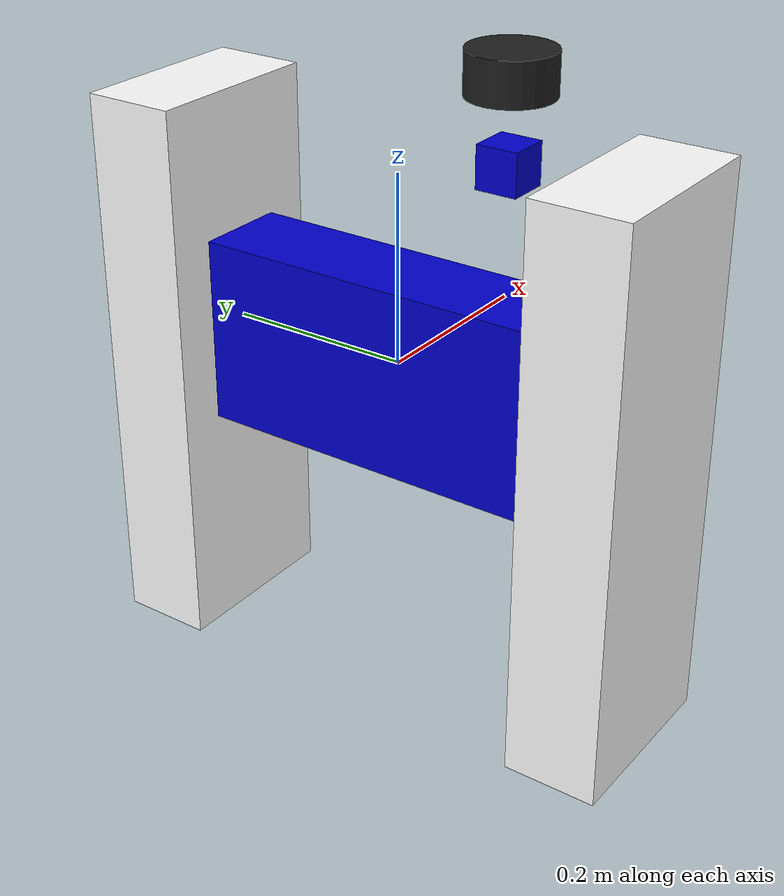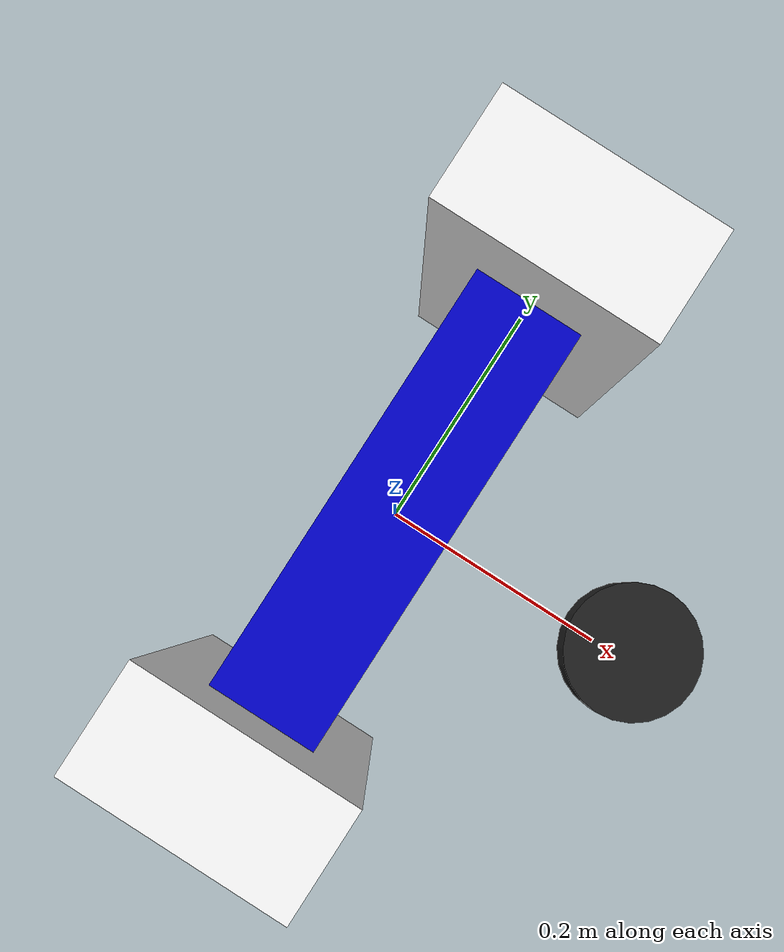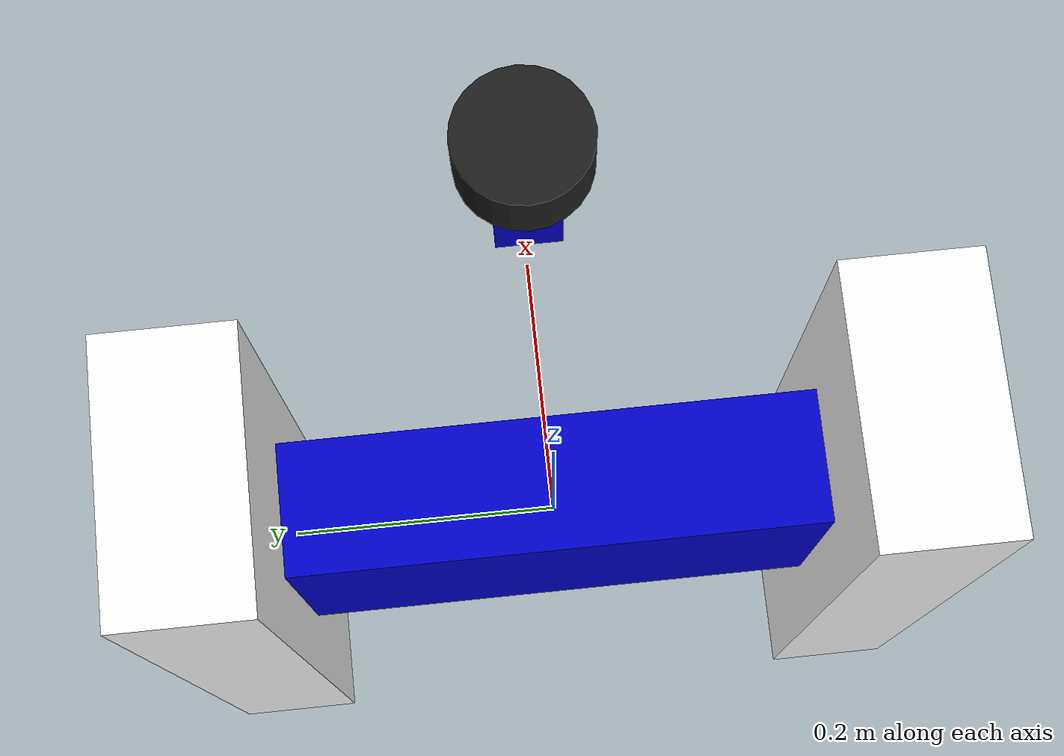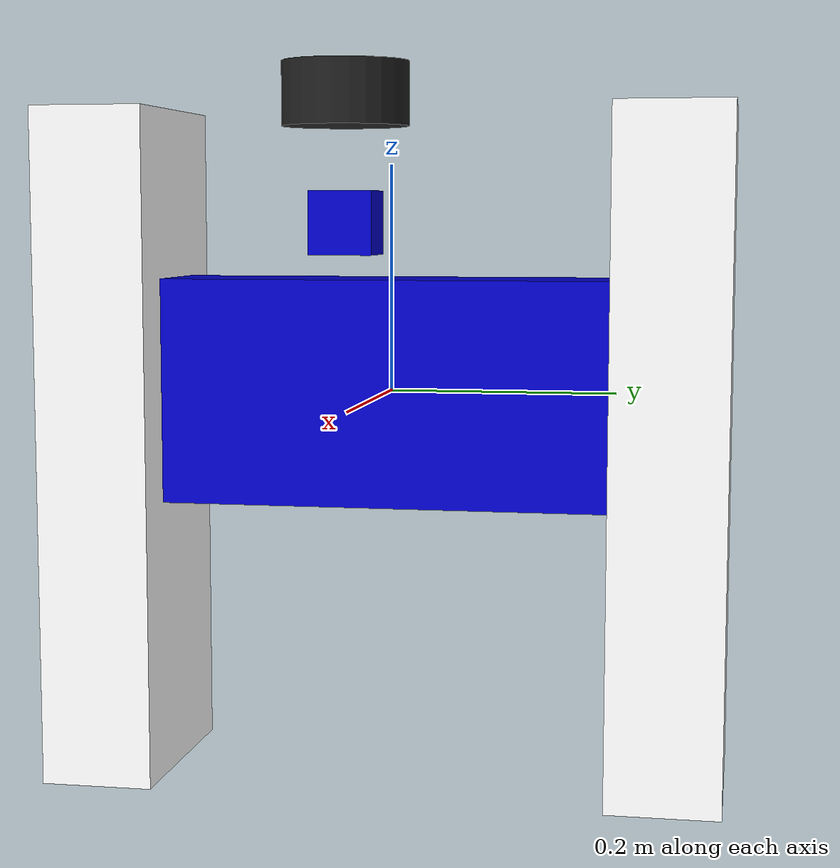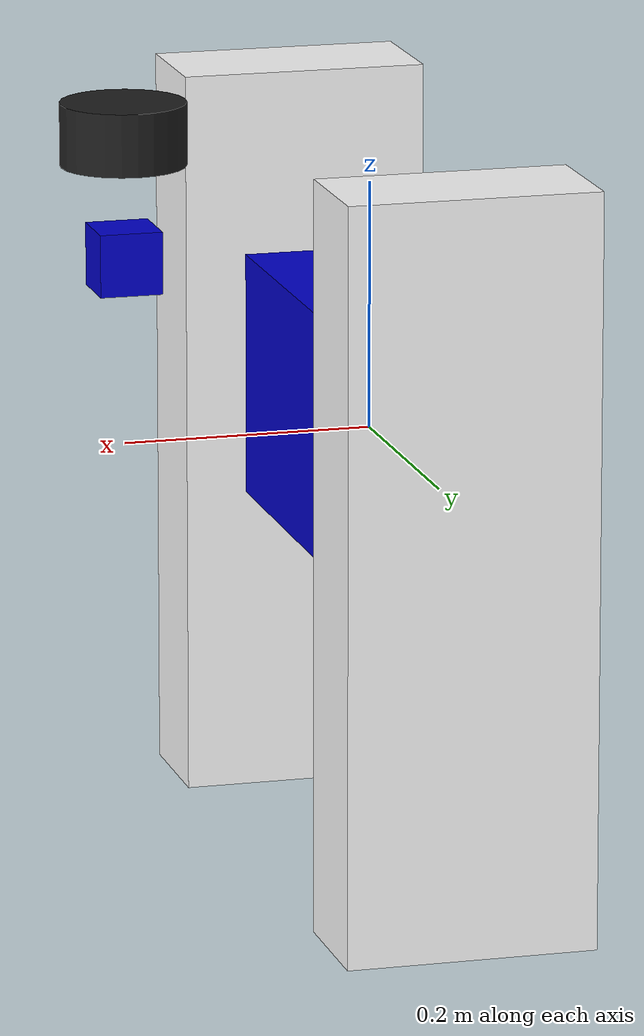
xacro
<?xml version="1.0"?>
<robot name="materials">

  <material name="blue">
    <color rgba="0 0 0.8 1"/>
  </material>

  <material name="white">
    <color rgba="1 1 1 1"/>
  </material>

<link name="base_link">
  <visual>
    <geometry>
      <box size="0.10 0.4 0.2"/>
    </geometry>
    <material name="blue"/>
  </visual>
<collision>
  <origin xyz="0 0 0" rpy="0 0 0"/>
  <geometry>
    <box size="0.10 0.4 0.2"/>
  </geometry>
</collision>

  <inertial>
    <origin xyz="0 0 0" rpy="0 0 0"/>
    <mass value="3.0"/>
    <inertia
      ixx="0.05" ixy="0.0" ixz="0.0"
      iyy="0.02" iyz="0.0"
      izz="0.04"/>
  </inertial>
</link>

<link name="right_leg">
  <visual>
    <geometry>
      <box size="0.6 0.1 0.2"/>
    </geometry>
    <origin rpy="0 1.57075 0" xyz="0 0 -0.3"/>
    <material name="white"/>
  </visual>
<collision>
  <origin xyz="0 0 -0.3" rpy="0 1.57075 0"/>
  <geometry>
    <box size="0.6 0.1 0.2"/>
  </geometry>
</collision>

  <inertial>
    <origin xyz="0 0 -0.3" rpy="0 0 0"/>
    <mass value="1.0"/>
    <inertia
      ixx="0.02" ixy="0.0" ixz="0.0"
      iyy="0.06" iyz="0.0"
      izz="0.06"/>
  </inertial>
</link>

  <joint name="base_to_right_leg" type="continuous">
    <parent link="base_link"/>
    <child link="right_leg"/>
    <origin xyz="0 -0.25 0.25"/>
    <axis xyz="0 1 0"/>
  </joint>

<link name="left_leg">
  <visual>
    <geometry>
      <box size="0.6 0.1 0.2"/>
    </geometry>
    <origin rpy="0 1.57075 0" xyz="0 0 -0.3"/>
    <material name="white"/>
  </visual>
<collision>
  <origin xyz="0 0 -0.3" rpy="0 1.57075 0"/>
  <geometry>
    <box size="0.6 0.1 0.2"/>
  </geometry>
</collision>

  <inertial>
    <origin xyz="0 0 -0.3" rpy="0 0 0"/>
    <mass value="1.0"/>
    <inertia
      ixx="0.02" ixy="0.0" ixz="0.0"
      iyy="0.06" iyz="0.0"
      izz="0.06"/>
  </inertial>
</link>

  <joint name="base_to_left_leg" type="continuous">
    <parent link="base_link"/>
    <child link="left_leg"/>
    <origin xyz="0 0.25 0.25"/>
    <axis xyz="0 1 0"/>
  </joint>
  <link name="lidar_link">
  <visual>
    <geometry>
      <cylinder radius="0.05" length="0.05"/>
    </geometry>
    <material name="black"/>
  </visual>

  <collision>
    <geometry>
      <cylinder radius="0.05" length="0.05"/>
    </geometry>
  </collision>

  <inertial>
    <mass value="0.2"/>
    <origin xyz="0 0 0"/>
    <inertia ixx="0.0005" iyy="0.0005" izz="0.0005"
             ixy="0" ixz="0" iyz="0"/>
  </inertial>
</link>
<joint name="lidar_joint" type="fixed">
  <parent link="base_link"/>
  <child link="lidar_link"/>
  <origin xyz="0.2 0 0.25" rpy="0 0 0"/>
</joint>
<gazebo reference="lidar_link">
  <sensor type="ray" name="lidar_sensor">
    <always_on>true</always_on>
    <update_rate>10</update_rate>
    <visualize>true</visualize>

    <ray>
      <scan>
        <horizontal>
          <samples>360</samples>
          <min_angle>-3.14159</min_angle>
          <max_angle>3.14159</max_angle>
        </horizontal>
      </scan>

      <range>
        <min>0.12</min>
        <max>10.0</max>
        <resolution>0.01</resolution>
      </range>
    </ray>

    <plugin name="lidar_plugin" filename="libgazebo_ros_ray_sensor.so">
      <ros>
        <namespace>/scan</namespace>
      </ros>
      <output_type>sensor_msgs/LaserScan</output_type>
      <frame_name>lidar_link</frame_name>
      <topic_name>scan</topic_name>
    </plugin>
  </sensor>
</gazebo>

  <link name="camera_link">
  <visual>
    <geometry>
      <box size="0.05 0.05 0.05"/>
    </geometry>
    <material name="blue"/>
  </visual>

  <collision>
    <geometry>
      <box size="0.05 0.05 0.05"/>
    </geometry>
  </collision>

  <inertial>
    <mass value="0.1"/>
    <origin xyz="0 0 0"/>
    <inertia ixx="0.0001" iyy="0.0001" izz="0.0001"
             ixy="0" ixz="0" iyz="0"/>
  </inertial>
</link>
<gazebo reference="camera_link">
  <sensor type="camera" name="camera_sensor">
    <always_on>true</always_on>
    <update_rate>30</update_rate>
    <visualize>true</visualize>

    <pose>0 0 0 0 0 0</pose>

    <camera>
      <horizontal_fov>1.396</horizontal_fov>
      <image>
        <width>640</width>
        <height>480</height>
        <format>R8G8B8</format>
      </image>
      <clip>
        <near>0.1</near>
        <far>100</far>
      </clip>
    </camera>

    <plugin name="camera_controller" filename="libgazebo_ros_camera.so">
      <ros>
        <namespace>/camera</namespace>
      </ros>
      <camera_name>camera</camera_name>
      <frame_name>camera_link</frame_name>
      <image_topic_name>image_raw</image_topic_name>
      <camera_info_topic_name>camera_info</camera_info_topic_name>
    </plugin>
  </sensor>
</gazebo>

<joint name="camera_joint" type="fixed">
  <parent link="base_link"/>
  <child link="camera_link"/>
  <origin xyz="0.2 0 0.15" rpy="0 0 0"/>
</joint>

</robot>
